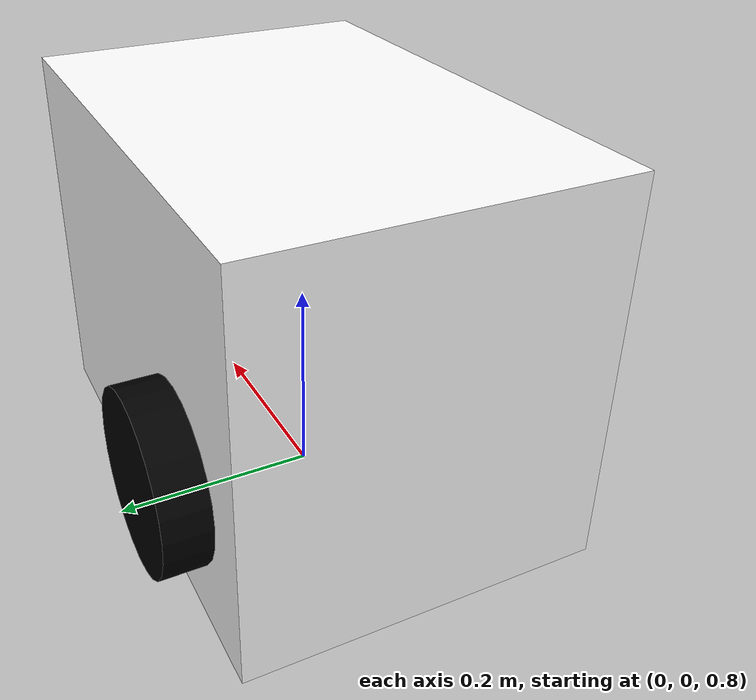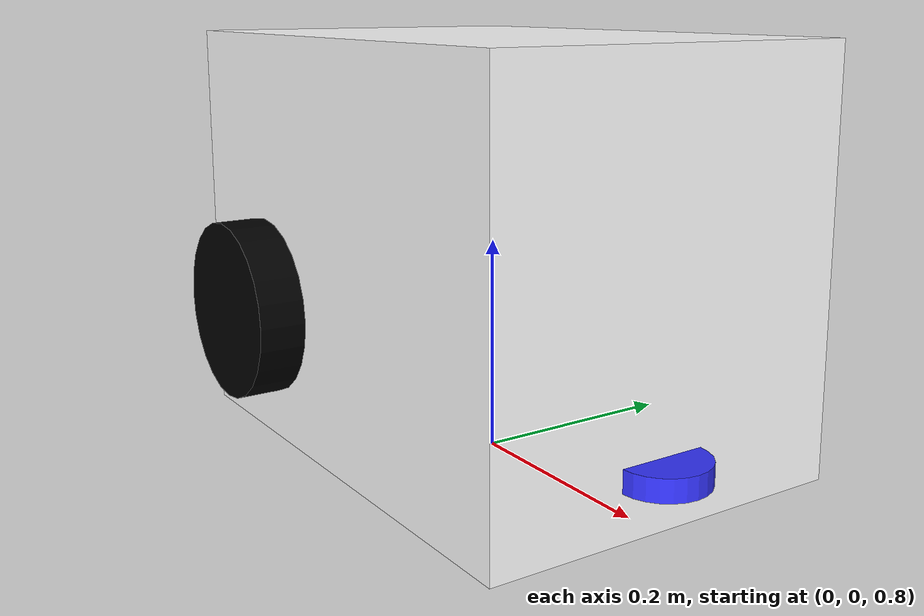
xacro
<?xml version="1.0"?>
<robot xmlns:xacro="http://www.ros.org/wiki/xacro">

    <!-- Properties -->
    <xacro:include filename="$(find robot_description)/urdf/properties.urdf.xacro" />

    <!-- Components -->
    <xacro:include filename="$(find robot_description)/urdf/components/inertial_macros.xacro" />
    <xacro:include filename="$(find robot_description)/urdf/components/gazebo_materials.xacro" />

    <!-- Sensors -->
    <xacro:property name="M_PI" value="3.14159"/>
    <xacro:property name="scale_ratio" value="1" />
    <!-- Path Meshes -->
    <xacro:property name="path_meshes" value="file://$(find robot_description)/urdf/meshes" />

    <!-- ****************** Robot bases ***************************  -->
    <!-- Define the center of the main robot chassis projected on the ground -->
    <link name="base_footprint">
    </link>

    <!-- BASE LINK -->
    <link name="base_link">
        <visual>
            <origin xyz="0 0 0" rpy="0 0 0" />
            <geometry>
                <box size="0.5 0.345 0.377971" />
            </geometry>
            <material name="white">
            </material>
        </visual>
        <xacro:inertial_box mass="5.79174328389446" x="-0.0374777931065171"
            y="-0.000742607274570373" z="0.0517646177576365">
            <origin xyz="-0.0374777931065171 -0.000742607274570373 0.0517646177576365" rpy="0 0 0" />
        </xacro:inertial_box>
    </link>

    <joint name="base_to_footprint" type="fixed">
        <parent link="base_footprint" />
        <child link="base_link" />
        <origin xyz="0 0 1" rpy="0 0 0" />
    </joint>

    <!-- Right Wheel -->
    <link name="rightwheel_link">
        <visual>
            <origin xyz="0 0 0" rpy="0 0 0" />
            <geometry>
                <cylinder radius="0.082" length="0.06"/>
            </geometry>
            <material name="black">
            </material>
        </visual>
        <xacro:inertial_box mass="1.0582" x="-1.2143E-17" y="0.033904" z="1.3878E-17">
            <origin xyz="-1.2143E-17 0.033904 1.3878E-17" rpy="0 0 0" />
        </xacro:inertial_box>
    </link>

    <!-- Right Wheel Joint -->
    <joint name="rightwheel_joint" type="continuous">
        <origin xyz="-0.12418 0.185 -0.063" rpy="-${M_PI/2} 0 0" />
        <parent link="base_link" />
        <child link="rightwheel_link" />
        <axis xyz="0 0 -1" />
    </joint>

    <!-- Left Wheel -->
    <link name="leftwheel_link">
        <visual>
            <origin xyz="0 0 0" rpy="0 0 0" />
            <geometry>
                <cylinder radius="0.082" length="0.06"/>
            </geometry>
            <material name="black">
            </material>
        </visual>
        <xacro:inertial_box mass="1.0582" x="-2.4286E-17" y="-0.033904" z="4.1633E-17">
            <origin xyz="-2.4286E-17 -0.033904 4.1633E-17" rpy="0 0 0" />
        </xacro:inertial_box>
    </link>

    <!-- Left Wheel Joint -->
    <joint name="leftwheel_joint" type="continuous">
        <origin xyz="-0.12418 -0.185 -0.063" rpy="-${M_PI/2} 0 0" />
        <parent link="base_link" />
        <child link="leftwheel_link" />
        <axis xyz="0 0 1" />
    </joint>

    <!-- Caster Wheel -->
    <link name="casterwheel_link">
        <visual>
            <origin xyz="0 0 0" rpy="0 0 0" />
            <geometry>
                <cylinder radius="0.04" length="0.02"/>
            </geometry>
            <material name="blue">
            </material>
        </visual>
        <xacro:inertial_box mass="0.10255" x="-0.0032546" y="0.0053327" z="0.013127">
            <origin xyz="-0.0032546 0.0053327 0.013127" rpy="0 0 0" />
        </xacro:inertial_box>
    </link>

    <!-- Caster Wheel Joint -->
    <joint name="casterwheel_joint" type="fixed">
        <origin xyz="0.25029 -0.01098 -0.1375" rpy="0 0 0" />
        <parent link="base_link" />
        <child link="casterwheel_link" />
        <axis xyz="0 0 0" />
    </joint>

    <!-- Lidar -->

    <!-- Lidar Joint -->

    <!-- IMU -->

    <!-- IMU Joint -->

    <!-- Camera -->

    <!-- Camera Joint -->

    <!-- Camera -->

    <!-- Camera Joint -->

</robot>

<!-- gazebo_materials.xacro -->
<robot xmlns:xacro="http://www.ros.org/wiki/xacro">

    <xacro:property name="base_link_color" value="Gazebo/White" />
    <xacro:property name="camerad435i_link_color" value="Gazebo/White" />
    <xacro:property name="camerat265_link_color" value="Gazebo/White" />
    <xacro:property name="lidar_color" value="Gazebo/LightBlueLaser" />
    <xacro:property name="imu_link_color" value="Gazebo/Black" />
    <xacro:property name="wheels_link_color" value="Gazebo/Red" />
    <xacro:property name="casterwheel_link_color" value="Gazebo/Blue" />

    <material name="white">
        <color rgba="1 1 1 1" />
    </material>

    <material name="orange">
        <color rgba="1 0.3 0.1 1" />
    </material>

    <material name="blue">
        <color rgba="0.2 0.2 1 1" />
    </material>

    <material name="black">
        <color rgba="0 0 0 1" />
    </material>

    <material name="gray">
        <color rgba="0.3 0.3 0.3 1" />
    </material>

    <material name="yellow">
        <color rgba="1 1 0.5 1" />
    </material>

    <gazebo reference="base_link">
        <material>${base_link_color}</material>
    </gazebo>

    <gazebo reference="camerad435i_link">
        <material>${camerad435i_link_color}</material>
    </gazebo>

    <gazebo reference="imu_link">
        <material>${imu_link_color}</material>
    </gazebo>

    <gazebo reference="rightwheel_link">
        <material>${wheels_link_color}</material>
    </gazebo>

    <gazebo reference="leftwheel_link">
        <material>${wheels_link_color}</material>
    </gazebo>

    <gazebo reference="casterwheel_link">
        <material>${casterwheel_link_color}</material>
    </gazebo>

    <gazebo reference="lidar_link">
        <material>${lidar_color}</material>
    </gazebo>

</robot>
